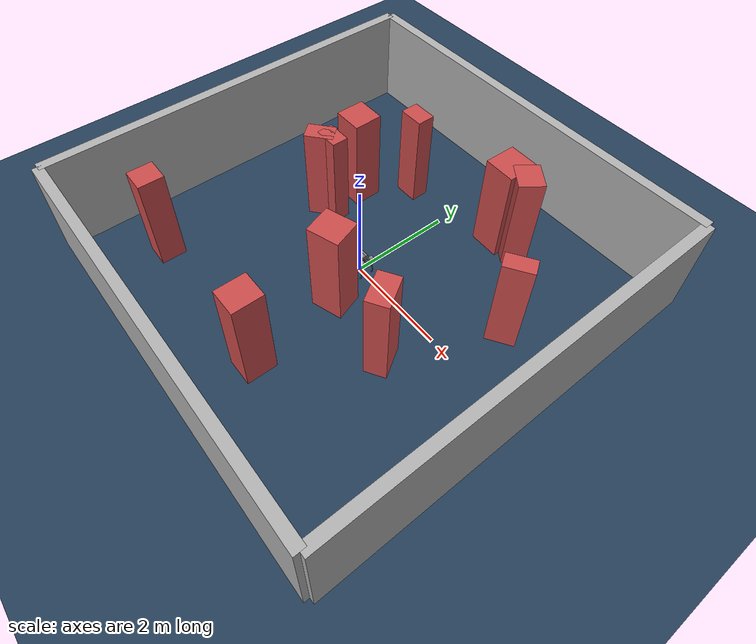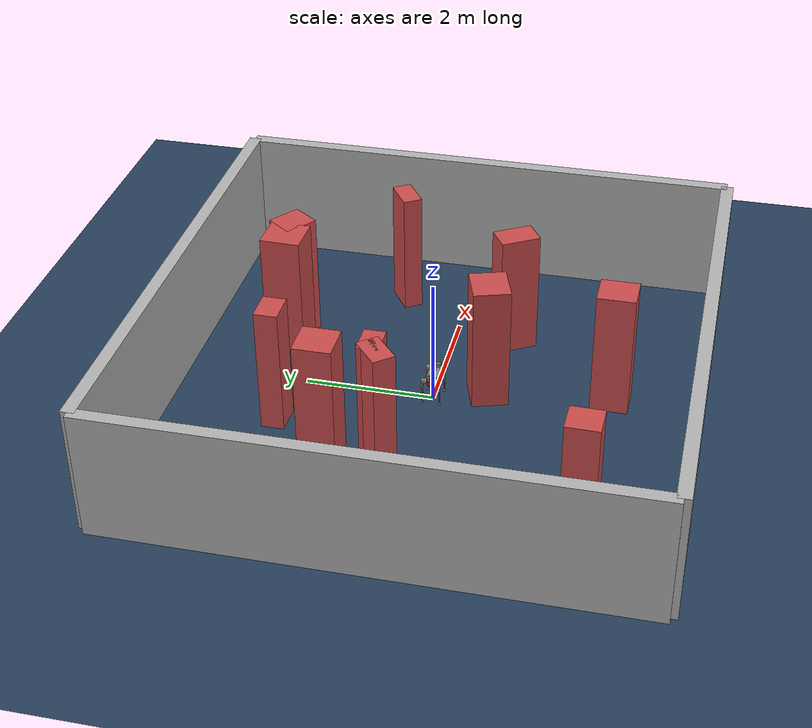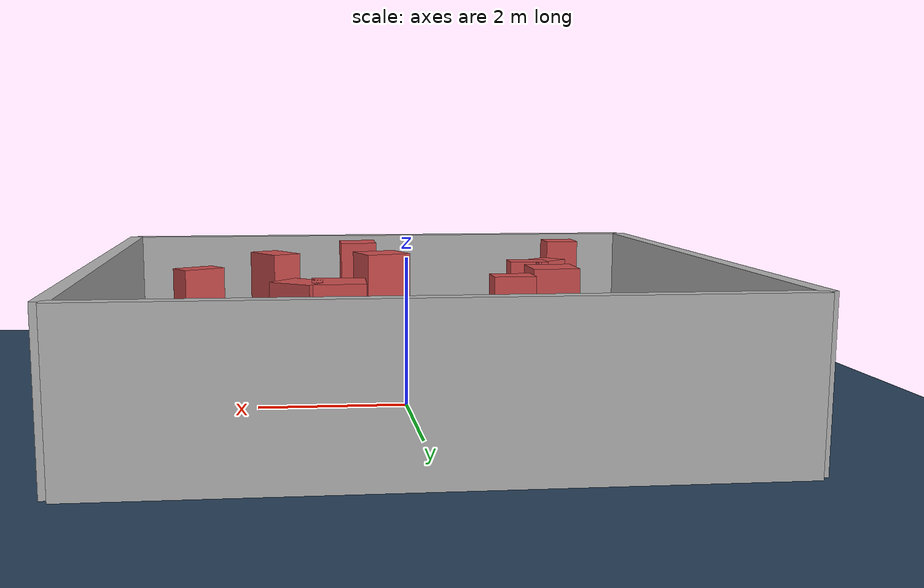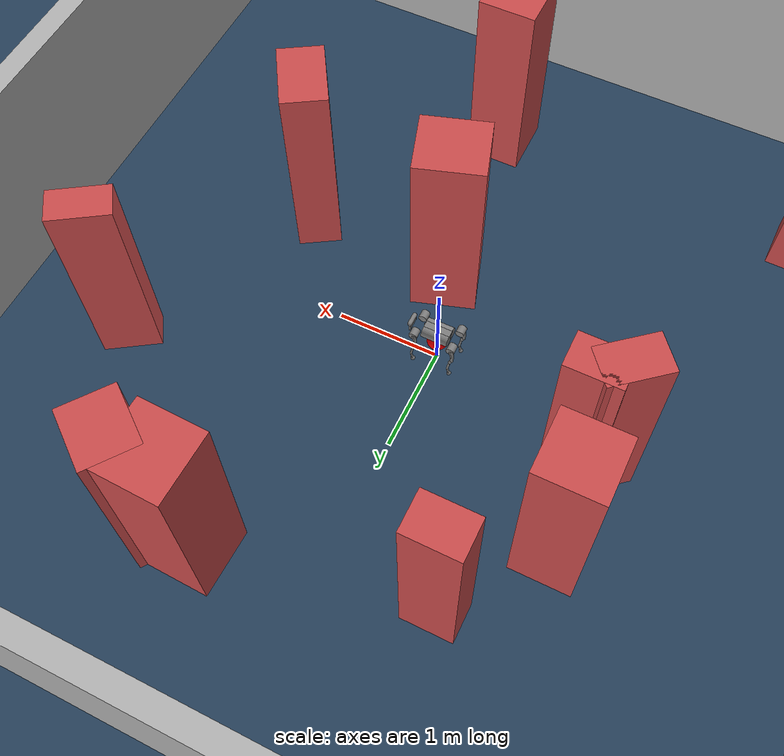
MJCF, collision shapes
<?xml version='1.0' encoding='utf-8'?>
<mujoco model="a1 scene">
  <include file="a1.xml" />

  <statistic center="0 0 0.1" extent="0.8" />

  <visual>
    <headlight diffuse="0.6 0.6 0.6" ambient="0.3 0.3 0.3" specular="0 0 0" />
    <rgba haze="0.15 0.25 0.35 1" />
    <global azimuth="120" elevation="-20" />
  </visual>

  <asset>
    <texture type="skybox" builtin="gradient" rgb1="0.3 0.5 0.7" rgb2="0 0 0" width="512" height="3072" />
    <texture type="2d" name="groundplane" builtin="checker" mark="edge" rgb1="0.2 0.3 0.4" rgb2="0.1 0.2 0.3" markrgb="0.8 0.8 0.8" width="300" height="300" />
    <material name="groundplane" texture="groundplane" texuniform="true" texrepeat="5 5" reflectance="0.2" />
    <material name="wall" rgba="0.7 0.7 0.7 1" specular="0.3" shininess="0.5" />
    <material name="cube1" rgba="0.8 0.3 0.3 1" specular="0.5" shininess="0.8" />
    <material name="cube2" rgba="0.3 0.8 0.3 1" specular="0.5" shininess="0.8" />
    <material name="cube3" rgba="0.3 0.3 0.8 1" specular="0.5" shininess="0.8" />
    <material name="cube4" rgba="0.8 0.8 0.3 1" specular="0.5" shininess="0.8" />
  </asset>

  <worldbody>
    <light pos="0 0 1.5" dir="0 0 -1" directional="true" />
    <geom name="floor" size="0 0 0.05" type="plane" material="groundplane" />

    <geom name="wall_front" type="box" size="4.0 0.1 1.0" pos="0 4.0 1.0" material="wall" />
    <geom name="wall_back" type="box" size="4.0 0.1 1.0" pos="0 -4.0 1.0" material="wall" />
    <geom name="wall_left" type="box" size="0.1 4.0 1.0" pos="-4.0 0 1.0" material="wall" />
    <geom name="wall_right" type="box" size="0.1 4.0 1.0" pos="4.0 0 1.0" material="wall" />

    <body name="target_body" mocap="true" pos="0 0 0.3">
      <geom name="target_point" type="sphere" size="0.1" rgba="1.0 0.0 0.0 1.0" contype="0" conaffinity="0" />
    </body>

  <geom name="cube1" type="box" size="0.1519272339692125 0.26897587873511414 1.0" pos="2.667562986611813 1.0234298391752268 1.0" material="cube1" quat="0.4767812213248155 0 0 0.8790219946008275" /><geom name="cube2" type="box" size="0.2437203022275367 0.17804011198786285 1.0" pos="-1.0141152955280182 2.1776975380972985 1.0" material="cube1" /><geom name="cube3" type="box" size="0.30968470575302276 0.2817750858134602 1.0" pos="0.2761947940577554 -0.7892045274352584 1.0" material="cube1" quat="-0.1575698757578269 0 0 0.9875078400973144" /><geom name="cube4" type="box" size="0.2710380376663317 0.23903428145525746 1.0" pos="1.4324423559892132 2.5743677811237795 1.0" material="cube1" quat="0.3149287166200267 0 0 0.9491153267375166" /><geom name="cube5" type="box" size="0.20774359911129636 0.3125778177456924 1.0" pos="1.7469804275025709 -0.9290134905871918 1.0" material="cube1" quat="0.9617602927254698 0 0 0.27389256896932906" /><geom name="cube6" type="box" size="0.2667686048232363 0.29072428463930927 1.0" pos="0.48887692061038734 -2.6592158553362335 1.0" material="cube1" /><geom name="cube7" type="box" size="0.27453449845848377 0.17408524907329162 1.0" pos="-1.731012213388264 0.4358688497237426 1.0" material="cube1" quat="0.9397130742374125 0 0 0.3419639427005007" /><geom name="cube8" type="box" size="0.2362244437706293 0.2450602915223963 1.0" pos="-2.668278780192041 -2.6074198044170904 1.0" material="cube1" quat="-0.9999744045813385 0 0 0.0071547314553171175" /><geom name="cube9" type="box" size="0.2881725239125276 0.28588508987218975 1.0" pos="-1.6785434030980757 1.2937521123553362 1.0" material="cube1" /><geom name="cube10" type="box" size="0.2425821721581059 0.16095244574150588 1.0" pos="-1.517467386754529 0.5492826237543609 1.0" material="cube1" /><geom name="cube11" type="box" size="0.3120009104786968 0.30140685015735097 1.0" pos="1.0235422036810693 2.571398132553104 1.0" material="cube1" quat="0.717765699841474 0 0 0.6962847119756967" /></worldbody>
</mujoco>

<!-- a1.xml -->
<mujoco model="a1">
  <compiler angle="radian" meshdir="assets" texturedir="assets" autolimits="true"/>

  <option cone="elliptic" impratio="100"/>

  <default>
    <default class="a1">
      <geom friction="0.4" margin="0.001" condim="1"/>
      <joint axis="0 1 0" damping="0.1" armature="0.01" frictionloss="0.2"/>
      <motor ctrlrange="-33.5 33.5"/>
      <default class="abduction">
        <joint axis="1 0 0" damping="0" range="-0.802851 0.802851"/>
      </default>
      <default class="hip">
        <joint range="-1.0472 4.18879"/>
      </default>
      <default class="knee">
        <joint range="-2.69653 -0.916298"/>
      </default>
      <default class="visual">
        <geom type="mesh" contype="0" conaffinity="0" group="2" material="dark"/>
      </default>
      <default class="collision">
        <geom group="3" type="capsule"/>
        <default class="hip_left">
          <geom size="0.04 0.04" quat="1 1 0 0" type="cylinder" pos="0 0.055 0"/>
        </default>
        <default class="hip_right">
          <geom size="0.04 0.04" quat="1 1 0 0" type="cylinder" pos="0 -0.055 0"/>
        </default>
        <default class="thigh1">
          <geom size="0.015" fromto="-0.02 0 0 -0.02 0 -0.16"/>
        </default>
        <default class="thigh2">
          <geom size="0.015" fromto="0 0 0 -0.02 0 -0.1"/>
        </default>
        <default class="thigh3">
          <geom size="0.015" fromto="-0.02 0 -0.16 0 0 -0.2"/>
        </default>
        <default class="calf1">
          <geom size="0.01" fromto="0 0 0 0.02 0 -0.13"/>
        </default>
        <default class="calf2">
          <geom size="0.01" fromto="0.02 0 -0.13 0 0 -0.2"/>
        </default>
        <default class="foot">
          <geom type="sphere" size="0.02" pos="0 0 -0.2" priority="1" solimp="0.015 1 0.02" condim="6"
            friction="0.8 0.02 0.01"/>
        </default>
      </default>
    </default>
  </default>

  <asset>
    <material name="dark" specular="0" shininess="0.5" rgba="0.15 0.15 0.15 1"/>
    <texture type="2d" name="trunk_A1" file="trunk_A1.png"/>
    <material name="carbonfibre" texture="trunk_A1" specular="0" shininess="0.25"/>
    <material name="transparent" rgba="1 1 1 0.01"/>

    <mesh class="a1" file="calf.obj"/>
    <mesh class="a1" file="hip.obj"/>
    <mesh class="a1" file="thigh.obj"/>
    <mesh class="a1" file="thigh_mirror.obj"/>
    <mesh class="a1" file="trunk.obj"/>
  </asset>

  <worldbody>
    <light name="spotlight" mode="targetbodycom" target="trunk" pos="0 -1 2"/>
    <body name="trunk" pos="0 0 0.43" childclass="a1">
      <freejoint name="root_joint" />
      <inertial mass="4.713" pos="0 0.0041 -0.0005"
        fullinertia="0.0158533 0.0377999 0.0456542 -3.66e-05 -6.11e-05 -2.75e-05"/>
      <geom class="visual" mesh="trunk" material="carbonfibre"/>
      <geom class="collision" size="0.125 0.04 0.057" type="box"/>
      <geom class="collision" quat="1 0 1 0" pos="0 -0.04 0" size="0.058 0.125" type="cylinder"/>
      <geom class="collision" quat="1 0 1 0" pos="0 +0.04 0" size="0.058 0.125" type="cylinder"/>
      <geom class="collision" pos="0.25 0 0" size="0.005 0.06 0.05" type="box"/>
      <geom class="collision" pos="0.25 0.06 -0.01" size="0.009 0.035"/>
      <geom class="collision" pos="0.25 -0.06 -0.01" size="0.009 0.035"/>
      <geom class="collision" pos="0.25 0 -0.05" size="0.005 0.06" quat="1 1 0 0"/>
      <geom class="collision" pos="0.255 0 0.0355" size="0.021 0.052" quat="1 1 0 0"/>
      <site name="imu" pos="0 0 0"/>
      <body name="FL_hip" pos="0.183 0.047 0">
        <inertial mass="0.696" pos="-0.003311 0.000635 3.1e-05" quat="0.494499 0.491507 0.506268 0.507528"
          diaginertia="0.000807752 0.00055293 0.000468983"/>
        <joint class="abduction" name="FL_hip_joint"/>
        <geom class="visual" mesh="hip"/>
        <geom class="hip_left"/>
        <geom class="collision" size="0.04 0.04" pos="0 0.055 0" quat="1 1 0 0" type="cylinder"/>
        <body name="FL_thigh" pos="0 0.08505 0">
          <inertial mass="1.013" pos="-0.003237 -0.022327 -0.027326" quat="0.999125 0.00256393 -0.0409531 0.00806091"
            diaginertia="0.00555739 0.00513936 0.00133944"/>
          <joint class="hip" name="FL_thigh_joint"/>
          <geom class="visual" mesh="thigh"/>
          <geom class="thigh1"/>
          <geom class="thigh2"/>
          <geom class="thigh3"/>
          <body name="FL_calf" pos="0 0 -0.2">
            <inertial mass="0.226" pos="0.00472659 0 -0.131975" quat="0.706886 0.017653 0.017653 0.706886"
              diaginertia="0.00340344 0.00339393 3.54834e-05"/>
            <joint class="knee" name="FL_calf_joint"/>
            <geom class="visual" mesh="calf"/>
            <geom class="calf1"/>
            <geom class="calf2"/>
            <geom class="foot"/>
            <site name="FL_touch" pos="0 0 -0.2" size="0.022" material="transparent"/>
          </body>
        </body>
      </body>
      <body name="FR_hip" pos="0.183 -0.047 0">
        <inertial mass="0.696" pos="-0.003311 -0.000635 3.1e-05" quat="0.507528 0.506268 0.491507 0.494499"
                  diaginertia="0.000807752 0.00055293 0.000468983"/>
        <joint class="abduction" name="FR_hip_joint"/>
        <geom class="visual" mesh="hip" quat="0 1 0 0"/>
        <geom class="hip_right"/>
        <body name="FR_thigh" pos="0 -0.08505 0">
          <inertial mass="1.013" pos="-0.003237 0.022327 -0.027326" quat="0.999125 -0.00256393 -0.0409531 -0.00806091"
                    diaginertia="0.00555739 0.00513936 0.00133944"/>
          <joint class="hip" name="FR_thigh_joint"/>
          <geom class="visual" mesh="thigh_mirror"/>
          <geom class="thigh1"/>
          <geom class="thigh2"/>
          <geom class="thigh3"/>
          <body name="FR_calf" pos="0 0 -0.2">
            <inertial mass="0.226" pos="0.00472659 0 -0.131975" quat="0.706886 0.017653 0.017653 0.706886"
                      diaginertia="0.00340344 0.00339393 3.54834e-05"/>
            <joint class="knee" name="FR_calf_joint"/>
            <geom class="visual" mesh="calf"/>
            <geom class="calf1"/>
            <geom class="calf2"/>
            <geom class="foot"/>
            <site name="FR_touch" pos="0 0 -0.2" size="0.022" material="transparent"/>
          </body>
        </body>
      </body>
      <body name="RL_hip" pos="-0.183 0.047 0">
        <inertial mass="0.696" pos="0.003311 0.000635 3.1e-05" quat="0.506268 0.507528 0.494499 0.491507"
          diaginertia="0.000807752 0.00055293 0.000468983"/>
        <joint class="abduction" name="RL_hip_joint"/>
        <geom class="visual" quat="0 0 1 0" mesh="hip"/>
        <geom class="hip_left"/>
        <body name="RL_thigh" pos="0 0.08505 0">
          <inertial mass="1.013" pos="-0.003237 -0.022327 -0.027326" quat="0.999125 0.00256393 -0.0409531 0.00806091"
            diaginertia="0.00555739 0.00513936 0.00133944"/>
          <joint class="hip" name="RL_thigh_joint"/>
          <geom class="visual" mesh="thigh"/>
          <geom class="thigh1"/>
          <geom class="thigh2"/>
          <geom class="thigh3"/>
          <body name="RL_calf" pos="0 0 -0.2">
            <inertial mass="0.226" pos="0.00472659 0 -0.131975" quat="0.706886 0.017653 0.017653 0.706886"
              diaginertia="0.00340344 0.00339393 3.54834e-05"/>
            <joint class="knee" name="RL_calf_joint"/>
            <geom class="visual" mesh="calf"/>
            <geom class="calf1"/>
            <geom class="calf2"/>
            <geom class="foot"/>
            <site name="RL_touch" pos="0 0 -0.2" size="0.022" material="transparent"/>
          </body>
        </body>
      </body>
      <body name="RR_hip" pos="-0.183 -0.047 0">
        <inertial mass="0.696" pos="0.003311 -0.000635 3.1e-05" quat="0.491507 0.494499 0.507528 0.506268"
                  diaginertia="0.000807752 0.00055293 0.000468983"/>
        <joint class="abduction" name="RR_hip_joint"/>
        <geom class="visual" quat="0 0 0 -1" mesh="hip"/>
        <geom class="hip_right"/>
        <body name="RR_thigh" pos="0 -0.08505 0">
          <inertial mass="1.013" pos="-0.003237 0.022327 -0.027326" quat="0.999125 -0.00256393 -0.0409531 -0.00806091"
                    diaginertia="0.00555739 0.00513936 0.00133944"/>
          <joint class="hip" name="RR_thigh_joint"/>
          <geom class="visual" mesh="thigh_mirror"/>
          <geom class="thigh1"/>
          <geom class="thigh2"/>
          <geom class="thigh3"/>
          <body name="RR_calf" pos="0 0 -0.2">
            <inertial mass="0.226" pos="0.00472659 0 -0.131975" quat="0.706886 0.017653 0.017653 0.706886"
                      diaginertia="0.00340344 0.00339393 3.54834e-05"/>
            <joint class="knee" name="RR_calf_joint"/>
            <geom class="visual" mesh="calf"/>
            <geom class="calf1"/>
            <geom class="calf2"/>
            <geom class="foot"/>
            <site name="RR_touch" pos="0 0 -0.2" size="0.022" material="transparent"/>
          </body>
        </body>
      </body>
    </body>
  </worldbody>

  <actuator>
    <motor class="abduction" name="M_FL_hip_joint" joint="FL_hip_joint"/>
    <motor class="hip" name="M_FL_thigh_joint" joint="FL_thigh_joint"/>
    <motor class="knee" name="M_FL_calf_joint" joint="FL_calf_joint"/>
    <motor class="abduction" name="M_FR_hip_joint" joint="FR_hip_joint"/>
    <motor class="hip" name="M_FR_thigh_joint" joint="FR_thigh_joint"/>
    <motor class="knee" name="M_FR_calf_joint" joint="FR_calf_joint"/>
    <motor class="abduction" name="M_RL_hip_joint" joint="RL_hip_joint"/>
    <motor class="hip" name="M_RL_thigh_joint" joint="RL_thigh_joint"/>
    <motor class="knee" name="M_RL_calf_joint" joint="RL_calf_joint"/>
    <motor class="abduction" name="M_RR_hip_joint" joint="RR_hip_joint"/>
    <motor class="hip" name="M_RR_thigh_joint" joint="RR_thigh_joint"/>
    <motor class="knee" name="M_RR_calf_joint" joint="RR_calf_joint"/>
  </actuator>

  <sensor>
    <jointpos name="FL_hip_pos" joint="FL_hip_joint"/>
    <jointpos name="FL_thigh_pos" joint="FL_thigh_joint"/>
    <jointpos name="FL_calf_pos" joint="FL_calf_joint"/>
    <jointpos name="FR_hip_pos" joint="FR_hip_joint"/>
    <jointpos name="FR_thigh_pos" joint="FR_thigh_joint"/>
    <jointpos name="FR_calf_pos" joint="FR_calf_joint"/>
    <jointpos name="RL_hip_pos" joint="RL_hip_joint"/>
    <jointpos name="RL_thigh_pos" joint="RL_thigh_joint"/>
    <jointpos name="RL_calf_pos" joint="RL_calf_joint"/>
    <jointpos name="RR_hip_pos" joint="RR_hip_joint"/>
    <jointpos name="RR_thigh_pos" joint="RR_thigh_joint"/>
    <jointpos name="RR_calf_pos" joint="RR_calf_joint"/>

    <jointvel name="FL_hip_vel" joint="FL_hip_joint"/>
    <jointvel name="FL_thigh_vel" joint="FL_thigh_joint"/>
    <jointvel name="FL_calf_vel" joint="FL_calf_joint"/>
    <jointvel name="FR_hip_vel" joint="FR_hip_joint"/>
    <jointvel name="FR_thigh_vel" joint="FR_thigh_joint"/>
    <jointvel name="FR_calf_vel" joint="FR_calf_joint"/>
    <jointvel name="RL_hip_vel" joint="RL_hip_joint"/>
    <jointvel name="RL_thigh_vel" joint="RL_thigh_joint"/>
    <jointvel name="RL_calf_vel" joint="RL_calf_joint"/>
    <jointvel name="RR_hip_vel" joint="RR_hip_joint"/>
    <jointvel name="RR_thigh_vel" joint="RR_thigh_joint"/>
    <jointvel name="RR_calf_vel" joint="RR_calf_joint"/>

    <jointactuatorfrc name="FL_hip_torque" joint="FL_hip_joint" noise="0.01"/>
    <jointactuatorfrc name="FL_thigh_torque" joint="FL_thigh_joint" noise="0.01"/>
    <jointactuatorfrc name="FL_calf_torque" joint="FL_calf_joint" noise="0.01"/>
    <jointactuatorfrc name="FR_hip_torque" joint="FR_hip_joint" noise="0.01"/>
    <jointactuatorfrc name="FR_thigh_torque" joint="FR_thigh_joint" noise="0.01"/>
    <jointactuatorfrc name="FR_calf_torque" joint="FR_calf_joint" noise="0.01"/>
    <jointactuatorfrc name="RL_hip_torque" joint="RL_hip_joint" noise="0.01"/>
    <jointactuatorfrc name="RL_thigh_torque" joint="RL_thigh_joint" noise="0.01"/>
    <jointactuatorfrc name="RL_calf_torque" joint="RL_calf_joint" noise="0.01"/>
    <jointactuatorfrc name="RR_hip_torque" joint="RR_hip_joint" noise="0.01"/>
    <jointactuatorfrc name="RR_thigh_torque" joint="RR_thigh_joint" noise="0.01"/>
    <jointactuatorfrc name="RR_calf_torque" joint="RR_calf_joint" noise="0.01"/>

    <framequat name="imu_quat" objtype="site" objname="imu"/>
    <gyro name="imu_gyro" site="imu"/>
    <accelerometer name="imu_acc" site="imu"/>
    <velocimeter name="imu_vel" site="imu" />

    <framepos name="frame_pos" objtype="site" objname="imu"/>

    <touch name="FL_touch" site="FL_touch"/>
    <touch name="FR_touch" site="FR_touch"/>
    <touch name="RL_touch" site="RL_touch"/>
    <touch name="RR_touch" site="RR_touch"/>
  </sensor>

  <keyframe>
    <key name="stand" qpos="0 0 0.42 1 0 0 0 0.1000 0.8000 -1.5000 -0.1000 0.8000 -1.5000 0.1000 1.0000 -1.5000 -0.1000 1.0000 -1.5000"/>
    <key name="home" qpos="0 0 0.15 1 0 0 0 0.4 1.2 -2.7 -0.4 1.2 -2.7 0.4 1.2 -2.7 -0.4 1.2 -2.7"
      ctrl="0 0 0 0 0 0 0 0 0 0 0 0 "/>
  </keyframe>
</mujoco>
